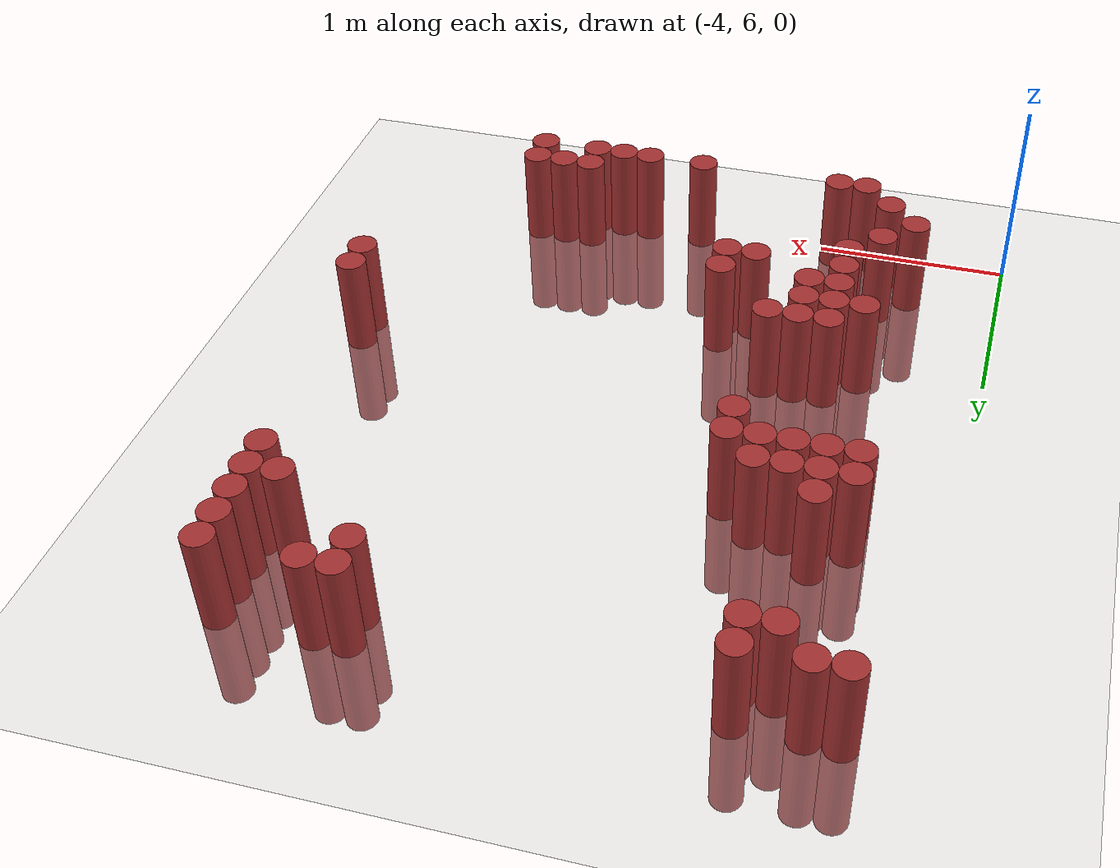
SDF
<sdf version="1.6">
 <world name="default">
  <model name="ground_plane">
   <static>1</static>
   <link name="link">
    <collision name="collision">
     <geometry><plane><normal>0 0 1</normal><size>100 100</size></plane></geometry>
     <surface><friction><ode><mu>100</mu><mu2>50</mu2></ode></friction></surface>
    </collision>
    <visual name="visual">
     <cast_shadows>0</cast_shadows>
     <geometry><plane><normal>0 0 1</normal><size>100 100</size></plane></geometry>
     <material>
      <script><uri>file://media/materials/scripts/gazebo.material</uri><name>Gazebo/Grey</name></script>
     </material>
    </visual>
   </link>
  </model>
  <model name="unit_cylinder_166">
   <static>1</static>
   <pose>-3.675000 9.375000 0.000000 0.000000 0.000000 0.000000</pose>
   <link name="link">
    <inertial>
     <mass>1</mass>
     <inertia><ixx>0.145833</ixx><ixy>0</ixy><ixz>0</ixz><iyy>0.145833</iyy><iyz>0</iyz><izz>0.125</izz></inertia>
    </inertial>
    <collision name="collision">
     <geometry><cylinder><radius>0.075000</radius><length>1</length></cylinder></geometry>
    </collision>
    <visual name="visual">
     <geometry><cylinder><radius>0.075000</radius><length>1</length></cylinder></geometry>
     <material>
      <ambient>0.648000 0.192000 0.192000 1</ambient>
      <diffuse>0.648000 0.192000 0.192000 1</diffuse>
     </material>
     <material>
      <script><name>Gazebo/Grey</name><uri>file://media/materials/scripts/gazebo.material</uri></script>
     </material>
    </visual>
   </link>
  </model>
  <model name="unit_cylinder_171">
   <static>1</static>
   <pose>-3.525000 6.375000 0.000000 0.000000 0.000000 0.000000</pose>
   <link name="link">
    <inertial>
     <mass>1</mass>
     <inertia><ixx>0.145833</ixx><ixy>0</ixy><ixz>0</ixz><iyy>0.145833</iyy><iyz>0</iyz><izz>0.125</izz></inertia>
    </inertial>
    <collision name="collision">
     <geometry><cylinder><radius>0.075000</radius><length>1</length></cylinder></geometry>
    </collision>
    <visual name="visual">
     <geometry><cylinder><radius>0.075000</radius><length>1</length></cylinder></geometry>
     <material>
      <ambient>0.648000 0.192000 0.192000 1</ambient>
      <diffuse>0.648000 0.192000 0.192000 1</diffuse>
     </material>
     <material>
      <script><name>Gazebo/Grey</name><uri>file://media/materials/scripts/gazebo.material</uri></script>
     </material>
    </visual>
   </link>
  </model>
  <model name="unit_cylinder_172">
   <static>1</static>
   <pose>-3.525000 8.175000 0.000000 0.000000 0.000000 0.000000</pose>
   <link name="link">
    <inertial>
     <mass>1</mass>
     <inertia><ixx>0.145833</ixx><ixy>0</ixy><ixz>0</ixz><iyy>0.145833</iyy><iyz>0</iyz><izz>0.125</izz></inertia>
    </inertial>
    <collision name="collision">
     <geometry><cylinder><radius>0.075000</radius><length>1</length></cylinder></geometry>
    </collision>
    <visual name="visual">
     <geometry><cylinder><radius>0.075000</radius><length>1</length></cylinder></geometry>
     <material>
      <ambient>0.648000 0.192000 0.192000 1</ambient>
      <diffuse>0.648000 0.192000 0.192000 1</diffuse>
     </material>
     <material>
      <script><name>Gazebo/Grey</name><uri>file://media/materials/scripts/gazebo.material</uri></script>
     </material>
    </visual>
   </link>
  </model>
  <model name="unit_cylinder_173">
   <static>1</static>
   <pose>-3.525000 8.325000 0.000000 0.000000 0.000000 0.000000</pose>
   <link name="link">
    <inertial>
     <mass>1</mass>
     <inertia><ixx>0.145833</ixx><ixy>0</ixy><ixz>0</ixz><iyy>0.145833</iyy><iyz>0</iyz><izz>0.125</izz></inertia>
    </inertial>
    <collision name="collision">
     <geometry><cylinder><radius>0.075000</radius><length>1</length></cylinder></geometry>
    </collision>
    <visual name="visual">
     <geometry><cylinder><radius>0.075000</radius><length>1</length></cylinder></geometry>
     <material>
      <ambient>0.648000 0.192000 0.192000 1</ambient>
      <diffuse>0.648000 0.192000 0.192000 1</diffuse>
     </material>
     <material>
      <script><name>Gazebo/Grey</name><uri>file://media/materials/scripts/gazebo.material</uri></script>
     </material>
    </visual>
   </link>
  </model>
  <model name="unit_cylinder_174">
   <static>1</static>
   <pose>-3.525000 9.375000 0.000000 0.000000 0.000000 0.000000</pose>
   <link name="link">
    <inertial>
     <mass>1</mass>
     <inertia><ixx>0.145833</ixx><ixy>0</ixy><ixz>0</ixz><iyy>0.145833</iyy><iyz>0</iyz><izz>0.125</izz></inertia>
    </inertial>
    <collision name="collision">
     <geometry><cylinder><radius>0.075000</radius><length>1</length></cylinder></geometry>
    </collision>
    <visual name="visual">
     <geometry><cylinder><radius>0.075000</radius><length>1</length></cylinder></geometry>
     <material>
      <ambient>0.648000 0.192000 0.192000 1</ambient>
      <diffuse>0.648000 0.192000 0.192000 1</diffuse>
     </material>
     <material>
      <script><name>Gazebo/Grey</name><uri>file://media/materials/scripts/gazebo.material</uri></script>
     </material>
    </visual>
   </link>
  </model>
  <model name="unit_cylinder_179">
   <static>1</static>
   <pose>-3.375000 6.225000 0.000000 0.000000 0.000000 0.000000</pose>
   <link name="link">
    <inertial>
     <mass>1</mass>
     <inertia><ixx>0.145833</ixx><ixy>0</ixy><ixz>0</ixz><iyy>0.145833</iyy><iyz>0</iyz><izz>0.125</izz></inertia>
    </inertial>
    <collision name="collision">
     <geometry><cylinder><radius>0.075000</radius><length>1</length></cylinder></geometry>
    </collision>
    <visual name="visual">
     <geometry><cylinder><radius>0.075000</radius><length>1</length></cylinder></geometry>
     <material>
      <ambient>0.648000 0.192000 0.192000 1</ambient>
      <diffuse>0.648000 0.192000 0.192000 1</diffuse>
     </material>
     <material>
      <script><name>Gazebo/Grey</name><uri>file://media/materials/scripts/gazebo.material</uri></script>
     </material>
    </visual>
   </link>
  </model>
  <model name="unit_cylinder_180">
   <static>1</static>
   <pose>-3.375000 6.525000 0.000000 0.000000 0.000000 0.000000</pose>
   <link name="link">
    <inertial>
     <mass>1</mass>
     <inertia><ixx>0.145833</ixx><ixy>0</ixy><ixz>0</ixz><iyy>0.145833</iyy><iyz>0</iyz><izz>0.125</izz></inertia>
    </inertial>
    <collision name="collision">
     <geometry><cylinder><radius>0.075000</radius><length>1</length></cylinder></geometry>
    </collision>
    <visual name="visual">
     <geometry><cylinder><radius>0.075000</radius><length>1</length></cylinder></geometry>
     <material>
      <ambient>0.648000 0.192000 0.192000 1</ambient>
      <diffuse>0.648000 0.192000 0.192000 1</diffuse>
     </material>
     <material>
      <script><name>Gazebo/Grey</name><uri>file://media/materials/scripts/gazebo.material</uri></script>
     </material>
    </visual>
   </link>
  </model>
  <model name="unit_cylinder_181">
   <static>1</static>
   <pose>-3.375000 7.125000 0.000000 0.000000 0.000000 0.000000</pose>
   <link name="link">
    <inertial>
     <mass>1</mass>
     <inertia><ixx>0.145833</ixx><ixy>0</ixy><ixz>0</ixz><iyy>0.145833</iyy><iyz>0</iyz><izz>0.125</izz></inertia>
    </inertial>
    <collision name="collision">
     <geometry><cylinder><radius>0.075000</radius><length>1</length></cylinder></geometry>
    </collision>
    <visual name="visual">
     <geometry><cylinder><radius>0.075000</radius><length>1</length></cylinder></geometry>
     <material>
      <ambient>0.648000 0.192000 0.192000 1</ambient>
      <diffuse>0.648000 0.192000 0.192000 1</diffuse>
     </material>
     <material>
      <script><name>Gazebo/Grey</name><uri>file://media/materials/scripts/gazebo.material</uri></script>
     </material>
    </visual>
   </link>
  </model>
  <model name="unit_cylinder_182">
   <static>1</static>
   <pose>-3.375000 8.175000 0.000000 0.000000 0.000000 0.000000</pose>
   <link name="link">
    <inertial>
     <mass>1</mass>
     <inertia><ixx>0.145833</ixx><ixy>0</ixy><ixz>0</ixz><iyy>0.145833</iyy><iyz>0</iyz><izz>0.125</izz></inertia>
    </inertial>
    <collision name="collision">
     <geometry><cylinder><radius>0.075000</radius><length>1</length></cylinder></geometry>
    </collision>
    <visual name="visual">
     <geometry><cylinder><radius>0.075000</radius><length>1</length></cylinder></geometry>
     <material>
      <ambient>0.648000 0.192000 0.192000 1</ambient>
      <diffuse>0.648000 0.192000 0.192000 1</diffuse>
     </material>
     <material>
      <script><name>Gazebo/Grey</name><uri>file://media/materials/scripts/gazebo.material</uri></script>
     </material>
    </visual>
   </link>
  </model>
  <model name="unit_cylinder_183">
   <static>1</static>
   <pose>-3.375000 8.325000 0.000000 0.000000 0.000000 0.000000</pose>
   <link name="link">
    <inertial>
     <mass>1</mass>
     <inertia><ixx>0.145833</ixx><ixy>0</ixy><ixz>0</ixz><iyy>0.145833</iyy><iyz>0</iyz><izz>0.125</izz></inertia>
    </inertial>
    <collision name="collision">
     <geometry><cylinder><radius>0.075000</radius><length>1</length></cylinder></geometry>
    </collision>
    <visual name="visual">
     <geometry><cylinder><radius>0.075000</radius><length>1</length></cylinder></geometry>
     <material>
      <ambient>0.648000 0.192000 0.192000 1</ambient>
      <diffuse>0.648000 0.192000 0.192000 1</diffuse>
     </material>
     <material>
      <script><name>Gazebo/Grey</name><uri>file://media/materials/scripts/gazebo.material</uri></script>
     </material>
    </visual>
   </link>
  </model>
  <model name="unit_cylinder_184">
   <static>1</static>
   <pose>-3.375000 8.475000 0.000000 0.000000 0.000000 0.000000</pose>
   <link name="link">
    <inertial>
     <mass>1</mass>
     <inertia><ixx>0.145833</ixx><ixy>0</ixy><ixz>0</ixz><iyy>0.145833</iyy><iyz>0</iyz><izz>0.125</izz></inertia>
    </inertial>
    <collision name="collision">
     <geometry><cylinder><radius>0.075000</radius><length>1</length></cylinder></geometry>
    </collision>
    <visual name="visual">
     <geometry><cylinder><radius>0.075000</radius><length>1</length></cylinder></geometry>
     <material>
      <ambient>0.648000 0.192000 0.192000 1</ambient>
      <diffuse>0.648000 0.192000 0.192000 1</diffuse>
     </material>
     <material>
      <script><name>Gazebo/Grey</name><uri>file://media/materials/scripts/gazebo.material</uri></script>
     </material>
    </visual>
   </link>
  </model>
  <model name="unit_cylinder_185">
   <static>1</static>
   <pose>-3.375000 9.225000 0.000000 0.000000 0.000000 0.000000</pose>
   <link name="link">
    <inertial>
     <mass>1</mass>
     <inertia><ixx>0.145833</ixx><ixy>0</ixy><ixz>0</ixz><iyy>0.145833</iyy><iyz>0</iyz><izz>0.125</izz></inertia>
    </inertial>
    <collision name="collision">
     <geometry><cylinder><radius>0.075000</radius><length>1</length></cylinder></geometry>
    </collision>
    <visual name="visual">
     <geometry><cylinder><radius>0.075000</radius><length>1</length></cylinder></geometry>
     <material>
      <ambient>0.648000 0.192000 0.192000 1</ambient>
      <diffuse>0.648000 0.192000 0.192000 1</diffuse>
     </material>
     <material>
      <script><name>Gazebo/Grey</name><uri>file://media/materials/scripts/gazebo.material</uri></script>
     </material>
    </visual>
   </link>
  </model>
  <model name="unit_cylinder_188">
   <static>1</static>
   <pose>-3.225000 6.075000 0.000000 0.000000 0.000000 0.000000</pose>
   <link name="link">
    <inertial>
     <mass>1</mass>
     <inertia><ixx>0.145833</ixx><ixy>0</ixy><ixz>0</ixz><iyy>0.145833</iyy><iyz>0</iyz><izz>0.125</izz></inertia>
    </inertial>
    <collision name="collision">
     <geometry><cylinder><radius>0.075000</radius><length>1</length></cylinder></geometry>
    </collision>
    <visual name="visual">
     <geometry><cylinder><radius>0.075000</radius><length>1</length></cylinder></geometry>
     <material>
      <ambient>0.648000 0.192000 0.192000 1</ambient>
      <diffuse>0.648000 0.192000 0.192000 1</diffuse>
     </material>
     <material>
      <script><name>Gazebo/Grey</name><uri>file://media/materials/scripts/gazebo.material</uri></script>
     </material>
    </visual>
   </link>
  </model>
  <model name="unit_cylinder_189">
   <static>1</static>
   <pose>-3.225000 6.675000 0.000000 0.000000 0.000000 0.000000</pose>
   <link name="link">
    <inertial>
     <mass>1</mass>
     <inertia><ixx>0.145833</ixx><ixy>0</ixy><ixz>0</ixz><iyy>0.145833</iyy><iyz>0</iyz><izz>0.125</izz></inertia>
    </inertial>
    <collision name="collision">
     <geometry><cylinder><radius>0.075000</radius><length>1</length></cylinder></geometry>
    </collision>
    <visual name="visual">
     <geometry><cylinder><radius>0.075000</radius><length>1</length></cylinder></geometry>
     <material>
      <ambient>0.648000 0.192000 0.192000 1</ambient>
      <diffuse>0.648000 0.192000 0.192000 1</diffuse>
     </material>
     <material>
      <script><name>Gazebo/Grey</name><uri>file://media/materials/scripts/gazebo.material</uri></script>
     </material>
    </visual>
   </link>
  </model>
  <model name="unit_cylinder_190">
   <static>1</static>
   <pose>-3.225000 6.825000 0.000000 0.000000 0.000000 0.000000</pose>
   <link name="link">
    <inertial>
     <mass>1</mass>
     <inertia><ixx>0.145833</ixx><ixy>0</ixy><ixz>0</ixz><iyy>0.145833</iyy><iyz>0</iyz><izz>0.125</izz></inertia>
    </inertial>
    <collision name="collision">
     <geometry><cylinder><radius>0.075000</radius><length>1</length></cylinder></geometry>
    </collision>
    <visual name="visual">
     <geometry><cylinder><radius>0.075000</radius><length>1</length></cylinder></geometry>
     <material>
      <ambient>0.648000 0.192000 0.192000 1</ambient>
      <diffuse>0.648000 0.192000 0.192000 1</diffuse>
     </material>
     <material>
      <script><name>Gazebo/Grey</name><uri>file://media/materials/scripts/gazebo.material</uri></script>
     </material>
    </visual>
   </link>
  </model>
  <model name="unit_cylinder_191">
   <static>1</static>
   <pose>-3.225000 6.975000 0.000000 0.000000 0.000000 0.000000</pose>
   <link name="link">
    <inertial>
     <mass>1</mass>
     <inertia><ixx>0.145833</ixx><ixy>0</ixy><ixz>0</ixz><iyy>0.145833</iyy><iyz>0</iyz><izz>0.125</izz></inertia>
    </inertial>
    <collision name="collision">
     <geometry><cylinder><radius>0.075000</radius><length>1</length></cylinder></geometry>
    </collision>
    <visual name="visual">
     <geometry><cylinder><radius>0.075000</radius><length>1</length></cylinder></geometry>
     <material>
      <ambient>0.648000 0.192000 0.192000 1</ambient>
      <diffuse>0.648000 0.192000 0.192000 1</diffuse>
     </material>
     <material>
      <script><name>Gazebo/Grey</name><uri>file://media/materials/scripts/gazebo.material</uri></script>
     </material>
    </visual>
   </link>
  </model>
  <model name="unit_cylinder_192">
   <static>1</static>
   <pose>-3.225000 7.125000 0.000000 0.000000 0.000000 0.000000</pose>
   <link name="link">
    <inertial>
     <mass>1</mass>
     <inertia><ixx>0.145833</ixx><ixy>0</ixy><ixz>0</ixz><iyy>0.145833</iyy><iyz>0</iyz><izz>0.125</izz></inertia>
    </inertial>
    <collision name="collision">
     <geometry><cylinder><radius>0.075000</radius><length>1</length></cylinder></geometry>
    </collision>
    <visual name="visual">
     <geometry><cylinder><radius>0.075000</radius><length>1</length></cylinder></geometry>
     <material>
      <ambient>0.648000 0.192000 0.192000 1</ambient>
      <diffuse>0.648000 0.192000 0.192000 1</diffuse>
     </material>
     <material>
      <script><name>Gazebo/Grey</name><uri>file://media/materials/scripts/gazebo.material</uri></script>
     </material>
    </visual>
   </link>
  </model>
  <model name="unit_cylinder_193">
   <static>1</static>
   <pose>-3.225000 7.275000 0.000000 0.000000 0.000000 0.000000</pose>
   <link name="link">
    <inertial>
     <mass>1</mass>
     <inertia><ixx>0.145833</ixx><ixy>0</ixy><ixz>0</ixz><iyy>0.145833</iyy><iyz>0</iyz><izz>0.125</izz></inertia>
    </inertial>
    <collision name="collision">
     <geometry><cylinder><radius>0.075000</radius><length>1</length></cylinder></geometry>
    </collision>
    <visual name="visual">
     <geometry><cylinder><radius>0.075000</radius><length>1</length></cylinder></geometry>
     <material>
      <ambient>0.648000 0.192000 0.192000 1</ambient>
      <diffuse>0.648000 0.192000 0.192000 1</diffuse>
     </material>
     <material>
      <script><name>Gazebo/Grey</name><uri>file://media/materials/scripts/gazebo.material</uri></script>
     </material>
    </visual>
   </link>
  </model>
  <model name="unit_cylinder_194">
   <static>1</static>
   <pose>-3.225000 8.175000 0.000000 0.000000 0.000000 0.000000</pose>
   <link name="link">
    <inertial>
     <mass>1</mass>
     <inertia><ixx>0.145833</ixx><ixy>0</ixy><ixz>0</ixz><iyy>0.145833</iyy><iyz>0</iyz><izz>0.125</izz></inertia>
    </inertial>
    <collision name="collision">
     <geometry><cylinder><radius>0.075000</radius><length>1</length></cylinder></geometry>
    </collision>
    <visual name="visual">
     <geometry><cylinder><radius>0.075000</radius><length>1</length></cylinder></geometry>
     <material>
      <ambient>0.648000 0.192000 0.192000 1</ambient>
      <diffuse>0.648000 0.192000 0.192000 1</diffuse>
     </material>
     <material>
      <script><name>Gazebo/Grey</name><uri>file://media/materials/scripts/gazebo.material</uri></script>
     </material>
    </visual>
   </link>
  </model>
  <model name="unit_cylinder_195">
   <static>1</static>
   <pose>-3.225000 8.325000 0.000000 0.000000 0.000000 0.000000</pose>
   <link name="link">
    <inertial>
     <mass>1</mass>
     <inertia><ixx>0.145833</ixx><ixy>0</ixy><ixz>0</ixz><iyy>0.145833</iyy><iyz>0</iyz><izz>0.125</izz></inertia>
    </inertial>
    <collision name="collision">
     <geometry><cylinder><radius>0.075000</radius><length>1</length></cylinder></geometry>
    </collision>
    <visual name="visual">
     <geometry><cylinder><radius>0.075000</radius><length>1</length></cylinder></geometry>
     <material>
      <ambient>0.648000 0.192000 0.192000 1</ambient>
      <diffuse>0.648000 0.192000 0.192000 1</diffuse>
     </material>
     <material>
      <script><name>Gazebo/Grey</name><uri>file://media/materials/scripts/gazebo.material</uri></script>
     </material>
    </visual>
   </link>
  </model>
  <model name="unit_cylinder_196">
   <static>1</static>
   <pose>-3.225000 9.225000 0.000000 0.000000 0.000000 0.000000</pose>
   <link name="link">
    <inertial>
     <mass>1</mass>
     <inertia><ixx>0.145833</ixx><ixy>0</ixy><ixz>0</ixz><iyy>0.145833</iyy><iyz>0</iyz><izz>0.125</izz></inertia>
    </inertial>
    <collision name="collision">
     <geometry><cylinder><radius>0.075000</radius><length>1</length></cylinder></geometry>
    </collision>
    <visual name="visual">
     <geometry><cylinder><radius>0.075000</radius><length>1</length></cylinder></geometry>
     <material>
      <ambient>0.648000 0.192000 0.192000 1</ambient>
      <diffuse>0.648000 0.192000 0.192000 1</diffuse>
     </material>
     <material>
      <script><name>Gazebo/Grey</name><uri>file://media/materials/scripts/gazebo.material</uri></script>
     </material>
    </visual>
   </link>
  </model>
  <model name="unit_cylinder_197">
   <static>1</static>
   <pose>-3.225000 9.375000 0.000000 0.000000 0.000000 0.000000</pose>
   <link name="link">
    <inertial>
     <mass>1</mass>
     <inertia><ixx>0.145833</ixx><ixy>0</ixy><ixz>0</ixz><iyy>0.145833</iyy><iyz>0</iyz><izz>0.125</izz></inertia>
    </inertial>
    <collision name="collision">
     <geometry><cylinder><radius>0.075000</radius><length>1</length></cylinder></geometry>
    </collision>
    <visual name="visual">
     <geometry><cylinder><radius>0.075000</radius><length>1</length></cylinder></geometry>
     <material>
      <ambient>0.648000 0.192000 0.192000 1</ambient>
      <diffuse>0.648000 0.192000 0.192000 1</diffuse>
     </material>
     <material>
      <script><name>Gazebo/Grey</name><uri>file://media/materials/scripts/gazebo.material</uri></script>
     </material>
    </visual>
   </link>
  </model>
  <model name="unit_cylinder_201">
   <static>1</static>
   <pose>-3.075000 6.075000 0.000000 0.000000 0.000000 0.000000</pose>
   <link name="link">
    <inertial>
     <mass>1</mass>
     <inertia><ixx>0.145833</ixx><ixy>0</ixy><ixz>0</ixz><iyy>0.145833</iyy><iyz>0</iyz><izz>0.125</izz></inertia>
    </inertial>
    <collision name="collision">
     <geometry><cylinder><radius>0.075000</radius><length>1</length></cylinder></geometry>
    </collision>
    <visual name="visual">
     <geometry><cylinder><radius>0.075000</radius><length>1</length></cylinder></geometry>
     <material>
      <ambient>0.648000 0.192000 0.192000 1</ambient>
      <diffuse>0.648000 0.192000 0.192000 1</diffuse>
     </material>
     <material>
      <script><name>Gazebo/Grey</name><uri>file://media/materials/scripts/gazebo.material</uri></script>
     </material>
    </visual>
   </link>
  </model>
  <model name="unit_cylinder_202">
   <static>1</static>
   <pose>-3.075000 6.975000 0.000000 0.000000 0.000000 0.000000</pose>
   <link name="link">
    <inertial>
     <mass>1</mass>
     <inertia><ixx>0.145833</ixx><ixy>0</ixy><ixz>0</ixz><iyy>0.145833</iyy><iyz>0</iyz><izz>0.125</izz></inertia>
    </inertial>
    <collision name="collision">
     <geometry><cylinder><radius>0.075000</radius><length>1</length></cylinder></geometry>
    </collision>
    <visual name="visual">
     <geometry><cylinder><radius>0.075000</radius><length>1</length></cylinder></geometry>
     <material>
      <ambient>0.648000 0.192000 0.192000 1</ambient>
      <diffuse>0.648000 0.192000 0.192000 1</diffuse>
     </material>
     <material>
      <script><name>Gazebo/Grey</name><uri>file://media/materials/scripts/gazebo.material</uri></script>
     </material>
    </visual>
   </link>
  </model>
  <model name="unit_cylinder_203">
   <static>1</static>
   <pose>-3.075000 7.125000 0.000000 0.000000 0.000000 0.000000</pose>
   <link name="link">
    <inertial>
     <mass>1</mass>
     <inertia><ixx>0.145833</ixx><ixy>0</ixy><ixz>0</ixz><iyy>0.145833</iyy><iyz>0</iyz><izz>0.125</izz></inertia>
    </inertial>
    <collision name="collision">
     <geometry><cylinder><radius>0.075000</radius><length>1</length></cylinder></geometry>
    </collision>
    <visual name="visual">
     <geometry><cylinder><radius>0.075000</radius><length>1</length></cylinder></geometry>
     <material>
      <ambient>0.648000 0.192000 0.192000 1</ambient>
      <diffuse>0.648000 0.192000 0.192000 1</diffuse>
     </material>
     <material>
      <script><name>Gazebo/Grey</name><uri>file://media/materials/scripts/gazebo.material</uri></script>
     </material>
    </visual>
   </link>
  </model>
  <model name="unit_cylinder_204">
   <static>1</static>
   <pose>-3.075000 7.275000 0.000000 0.000000 0.000000 0.000000</pose>
   <link name="link">
    <inertial>
     <mass>1</mass>
     <inertia><ixx>0.145833</ixx><ixy>0</ixy><ixz>0</ixz><iyy>0.145833</iyy><iyz>0</iyz><izz>0.125</izz></inertia>
    </inertial>
    <collision name="collision">
     <geometry><cylinder><radius>0.075000</radius><length>1</length></cylinder></geometry>
    </collision>
    <visual name="visual">
     <geometry><cylinder><radius>0.075000</radius><length>1</length></cylinder></geometry>
     <material>
      <ambient>0.648000 0.192000 0.192000 1</ambient>
      <diffuse>0.648000 0.192000 0.192000 1</diffuse>
     </material>
     <material>
      <script><name>Gazebo/Grey</name><uri>file://media/materials/scripts/gazebo.material</uri></script>
     </material>
    </visual>
   </link>
  </model>
  <model name="unit_cylinder_205">
   <static>1</static>
   <pose>-3.075000 8.175000 0.000000 0.000000 0.000000 0.000000</pose>
   <link name="link">
    <inertial>
     <mass>1</mass>
     <inertia><ixx>0.145833</ixx><ixy>0</ixy><ixz>0</ixz><iyy>0.145833</iyy><iyz>0</iyz><izz>0.125</izz></inertia>
    </inertial>
    <collision name="collision">
     <geometry><cylinder><radius>0.075000</radius><length>1</length></cylinder></geometry>
    </collision>
    <visual name="visual">
     <geometry><cylinder><radius>0.075000</radius><length>1</length></cylinder></geometry>
     <material>
      <ambient>0.648000 0.192000 0.192000 1</ambient>
      <diffuse>0.648000 0.192000 0.192000 1</diffuse>
     </material>
     <material>
      <script><name>Gazebo/Grey</name><uri>file://media/materials/scripts/gazebo.material</uri></script>
     </material>
    </visual>
   </link>
  </model>
  <model name="unit_cylinder_206">
   <static>1</static>
   <pose>-3.075000 8.325000 0.000000 0.000000 0.000000 0.000000</pose>
   <link name="link">
    <inertial>
     <mass>1</mass>
     <inertia><ixx>0.145833</ixx><ixy>0</ixy><ixz>0</ixz><iyy>0.145833</iyy><iyz>0</iyz><izz>0.125</izz></inertia>
    </inertial>
    <collision name="collision">
     <geometry><cylinder><radius>0.075000</radius><length>1</length></cylinder></geometry>
    </collision>
    <visual name="visual">
     <geometry><cylinder><radius>0.075000</radius><length>1</length></cylinder></geometry>
     <material>
      <ambient>0.648000 0.192000 0.192000 1</ambient>
      <diffuse>0.648000 0.192000 0.192000 1</diffuse>
     </material>
     <material>
      <script><name>Gazebo/Grey</name><uri>file://media/materials/scripts/gazebo.material</uri></script>
     </material>
    </visual>
   </link>
  </model>
  <model name="unit_cylinder_208">
   <static>1</static>
   <pose>-2.925000 7.275000 0.000000 0.000000 0.000000 0.000000</pose>
   <link name="link">
    <inertial>
     <mass>1</mass>
     <inertia><ixx>0.145833</ixx><ixy>0</ixy><ixz>0</ixz><iyy>0.145833</iyy><iyz>0</iyz><izz>0.125</izz></inertia>
    </inertial>
    <collision name="collision">
     <geometry><cylinder><radius>0.075000</radius><length>1</length></cylinder></geometry>
    </collision>
    <visual name="visual">
     <geometry><cylinder><radius>0.075000</radius><length>1</length></cylinder></geometry>
     <material>
      <ambient>0.648000 0.192000 0.192000 1</ambient>
      <diffuse>0.648000 0.192000 0.192000 1</diffuse>
     </material>
     <material>
      <script><name>Gazebo/Grey</name><uri>file://media/materials/scripts/gazebo.material</uri></script>
     </material>
    </visual>
   </link>
  </model>
  <model name="unit_cylinder_209">
   <static>1</static>
   <pose>-2.925000 8.025000 0.000000 0.000000 0.000000 0.000000</pose>
   <link name="link">
    <inertial>
     <mass>1</mass>
     <inertia><ixx>0.145833</ixx><ixy>0</ixy><ixz>0</ixz><iyy>0.145833</iyy><iyz>0</iyz><izz>0.125</izz></inertia>
    </inertial>
    <collision name="collision">
     <geometry><cylinder><radius>0.075000</radius><length>1</length></cylinder></geometry>
    </collision>
    <visual name="visual">
     <geometry><cylinder><radius>0.075000</radius><length>1</length></cylinder></geometry>
     <material>
      <ambient>0.648000 0.192000 0.192000 1</ambient>
      <diffuse>0.648000 0.192000 0.192000 1</diffuse>
     </material>
     <material>
      <script><name>Gazebo/Grey</name><uri>file://media/materials/scripts/gazebo.material</uri></script>
     </material>
    </visual>
   </link>
  </model>
  <model name="unit_cylinder_210">
   <static>1</static>
   <pose>-2.925000 8.175000 0.000000 0.000000 0.000000 0.000000</pose>
   <link name="link">
    <inertial>
     <mass>1</mass>
     <inertia><ixx>0.145833</ixx><ixy>0</ixy><ixz>0</ixz><iyy>0.145833</iyy><iyz>0</iyz><izz>0.125</izz></inertia>
    </inertial>
    <collision name="collision">
     <geometry><cylinder><radius>0.075000</radius><length>1</length></cylinder></geometry>
    </collision>
    <visual name="visual">
     <geometry><cylinder><radius>0.075000</radius><length>1</length></cylinder></geometry>
     <material>
      <ambient>0.648000 0.192000 0.192000 1</ambient>
      <diffuse>0.648000 0.192000 0.192000 1</diffuse>
     </material>
     <material>
      <script><name>Gazebo/Grey</name><uri>file://media/materials/scripts/gazebo.material</uri></script>
     </material>
    </visual>
   </link>
  </model>
  <model name="unit_cylinder_213">
   <static>1</static>
   <pose>-2.775000 6.825000 0.000000 0.000000 0.000000 0.000000</pose>
   <link name="link">
    <inertial>
     <mass>1</mass>
     <inertia><ixx>0.145833</ixx><ixy>0</ixy><ixz>0</ixz><iyy>0.145833</iyy><iyz>0</iyz><izz>0.125</izz></inertia>
    </inertial>
    <collision name="collision">
     <geometry><cylinder><radius>0.075000</radius><length>1</length></cylinder></geometry>
    </collision>
    <visual name="visual">
     <geometry><cylinder><radius>0.075000</radius><length>1</length></cylinder></geometry>
     <material>
      <ambient>0.648000 0.192000 0.192000 1</ambient>
      <diffuse>0.648000 0.192000 0.192000 1</diffuse>
     </material>
     <material>
      <script><name>Gazebo/Grey</name><uri>file://media/materials/scripts/gazebo.material</uri></script>
     </material>
    </visual>
   </link>
  </model>
  <model name="unit_cylinder_216">
   <static>1</static>
   <pose>-2.625000 6.825000 0.000000 0.000000 0.000000 0.000000</pose>
   <link name="link">
    <inertial>
     <mass>1</mass>
     <inertia><ixx>0.145833</ixx><ixy>0</ixy><ixz>0</ixz><iyy>0.145833</iyy><iyz>0</iyz><izz>0.125</izz></inertia>
    </inertial>
    <collision name="collision">
     <geometry><cylinder><radius>0.075000</radius><length>1</length></cylinder></geometry>
    </collision>
    <visual name="visual">
     <geometry><cylinder><radius>0.075000</radius><length>1</length></cylinder></geometry>
     <material>
      <ambient>0.648000 0.192000 0.192000 1</ambient>
      <diffuse>0.648000 0.192000 0.192000 1</diffuse>
     </material>
     <material>
      <script><name>Gazebo/Grey</name><uri>file://media/materials/scripts/gazebo.material</uri></script>
     </material>
    </visual>
   </link>
  </model>
  <model name="unit_cylinder_217">
   <static>1</static>
   <pose>-2.625000 6.975000 0.000000 0.000000 0.000000 0.000000</pose>
   <link name="link">
    <inertial>
     <mass>1</mass>
     <inertia><ixx>0.145833</ixx><ixy>0</ixy><ixz>0</ixz><iyy>0.145833</iyy><iyz>0</iyz><izz>0.125</izz></inertia>
    </inertial>
    <collision name="collision">
     <geometry><cylinder><radius>0.075000</radius><length>1</length></cylinder></geometry>
    </collision>
    <visual name="visual">
     <geometry><cylinder><radius>0.075000</radius><length>1</length></cylinder></geometry>
     <material>
      <ambient>0.648000 0.192000 0.192000 1</ambient>
      <diffuse>0.648000 0.192000 0.192000 1</diffuse>
     </material>
     <material>
      <script><name>Gazebo/Grey</name><uri>file://media/materials/scripts/gazebo.material</uri></script>
     </material>
    </visual>
   </link>
  </model>
  <model name="unit_cylinder_221">
   <static>1</static>
   <pose>-2.325000 6.075000 0.000000 0.000000 0.000000 0.000000</pose>
   <link name="link">
    <inertial>
     <mass>1</mass>
     <inertia><ixx>0.145833</ixx><ixy>0</ixy><ixz>0</ixz><iyy>0.145833</iyy><iyz>0</iyz><izz>0.125</izz></inertia>
    </inertial>
    <collision name="collision">
     <geometry><cylinder><radius>0.075000</radius><length>1</length></cylinder></geometry>
    </collision>
    <visual name="visual">
     <geometry><cylinder><radius>0.075000</radius><length>1</length></cylinder></geometry>
     <material>
      <ambient>0.648000 0.192000 0.192000 1</ambient>
      <diffuse>0.648000 0.192000 0.192000 1</diffuse>
     </material>
     <material>
      <script><name>Gazebo/Grey</name><uri>file://media/materials/scripts/gazebo.material</uri></script>
     </material>
    </visual>
   </link>
  </model>
  <model name="unit_cylinder_227">
   <static>1</static>
   <pose>-2.025000 6.075000 0.000000 0.000000 0.000000 0.000000</pose>
   <link name="link">
    <inertial>
     <mass>1</mass>
     <inertia><ixx>0.145833</ixx><ixy>0</ixy><ixz>0</ixz><iyy>0.145833</iyy><iyz>0</iyz><izz>0.125</izz></inertia>
    </inertial>
    <collision name="collision">
     <geometry><cylinder><radius>0.075000</radius><length>1</length></cylinder></geometry>
    </collision>
    <visual name="visual">
     <geometry><cylinder><radius>0.075000</radius><length>1</length></cylinder></geometry>
     <material>
      <ambient>0.648000 0.192000 0.192000 1</ambient>
      <diffuse>0.648000 0.192000 0.192000 1</diffuse>
     </material>
     <material>
      <script><name>Gazebo/Grey</name><uri>file://media/materials/scripts/gazebo.material</uri></script>
     </material>
    </visual>
   </link>
  </model>
  <model name="unit_cylinder_229">
   <static>1</static>
   <pose>-1.875000 6.075000 0.000000 0.000000 0.000000 0.000000</pose>
   <link name="link">
    <inertial>
     <mass>1</mass>
     <inertia><ixx>0.145833</ixx><ixy>0</ixy><ixz>0</ixz><iyy>0.145833</iyy><iyz>0</iyz><izz>0.125</izz></inertia>
    </inertial>
    <collision name="collision">
     <geometry><cylinder><radius>0.075000</radius><length>1</length></cylinder></geometry>
    </collision>
    <visual name="visual">
     <geometry><cylinder><radius>0.075000</radius><length>1</length></cylinder></geometry>
     <material>
      <ambient>0.648000 0.192000 0.192000 1</ambient>
      <diffuse>0.648000 0.192000 0.192000 1</diffuse>
     </material>
     <material>
      <script><name>Gazebo/Grey</name><uri>file://media/materials/scripts/gazebo.material</uri></script>
     </material>
    </visual>
   </link>
  </model>
  <model name="unit_cylinder_233">
   <static>1</static>
   <pose>-1.725000 6.075000 0.000000 0.000000 0.000000 0.000000</pose>
   <link name="link">
    <inertial>
     <mass>1</mass>
     <inertia><ixx>0.145833</ixx><ixy>0</ixy><ixz>0</ixz><iyy>0.145833</iyy><iyz>0</iyz><izz>0.125</izz></inertia>
    </inertial>
    <collision name="collision">
     <geometry><cylinder><radius>0.075000</radius><length>1</length></cylinder></geometry>
    </collision>
    <visual name="visual">
     <geometry><cylinder><radius>0.075000</radius><length>1</length></cylinder></geometry>
     <material>
      <ambient>0.648000 0.192000 0.192000 1</ambient>
      <diffuse>0.648000 0.192000 0.192000 1</diffuse>
     </material>
     <material>
      <script><name>Gazebo/Grey</name><uri>file://media/materials/scripts/gazebo.material</uri></script>
     </material>
    </visual>
   </link>
  </model>
  <model name="unit_cylinder_234">
   <static>1</static>
   <pose>-1.725000 6.225000 0.000000 0.000000 0.000000 0.000000</pose>
   <link name="link">
    <inertial>
     <mass>1</mass>
     <inertia><ixx>0.145833</ixx><ixy>0</ixy><ixz>0</ixz><iyy>0.145833</iyy><iyz>0</iyz><izz>0.125</izz></inertia>
    </inertial>
    <collision name="collision">
     <geometry><cylinder><radius>0.075000</radius><length>1</length></cylinder></geometry>
    </collision>
    <visual name="visual">
     <geometry><cylinder><radius>0.075000</radius><length>1</length></cylinder></geometry>
     <material>
      <ambient>0.648000 0.192000 0.192000 1</ambient>
      <diffuse>0.648000 0.192000 0.192000 1</diffuse>
     </material>
     <material>
      <script><name>Gazebo/Grey</name><uri>file://media/materials/scripts/gazebo.material</uri></script>
     </material>
    </visual>
   </link>
  </model>
  <model name="unit_cylinder_240">
   <static>1</static>
   <pose>-1.575000 6.225000 0.000000 0.000000 0.000000 0.000000</pose>
   <link name="link">
    <inertial>
     <mass>1</mass>
     <inertia><ixx>0.145833</ixx><ixy>0</ixy><ixz>0</ixz><iyy>0.145833</iyy><iyz>0</iyz><izz>0.125</izz></inertia>
    </inertial>
    <collision name="collision">
     <geometry><cylinder><radius>0.075000</radius><length>1</length></cylinder></geometry>
    </collision>
    <visual name="visual">
     <geometry><cylinder><radius>0.075000</radius><length>1</length></cylinder></geometry>
     <material>
      <ambient>0.648000 0.192000 0.192000 1</ambient>
      <diffuse>0.648000 0.192000 0.192000 1</diffuse>
     </material>
     <material>
      <script><name>Gazebo/Grey</name><uri>file://media/materials/scripts/gazebo.material</uri></script>
     </material>
    </visual>
   </link>
  </model>
  <model name="unit_cylinder_241">
   <static>1</static>
   <pose>-1.575000 9.225000 0.000000 0.000000 0.000000 0.000000</pose>
   <link name="link">
    <inertial>
     <mass>1</mass>
     <inertia><ixx>0.145833</ixx><ixy>0</ixy><ixz>0</ixz><iyy>0.145833</iyy><iyz>0</iyz><izz>0.125</izz></inertia>
    </inertial>
    <collision name="collision">
     <geometry><cylinder><radius>0.075000</radius><length>1</length></cylinder></geometry>
    </collision>
    <visual name="visual">
     <geometry><cylinder><radius>0.075000</radius><length>1</length></cylinder></geometry>
     <material>
      <ambient>0.648000 0.192000 0.192000 1</ambient>
      <diffuse>0.648000 0.192000 0.192000 1</diffuse>
     </material>
     <material>
      <script><name>Gazebo/Grey</name><uri>file://media/materials/scripts/gazebo.material</uri></script>
     </material>
    </visual>
   </link>
  </model>
  <model name="unit_cylinder_242">
   <static>1</static>
   <pose>-1.575000 9.375000 0.000000 0.000000 0.000000 0.000000</pose>
   <link name="link">
    <inertial>
     <mass>1</mass>
     <inertia><ixx>0.145833</ixx><ixy>0</ixy><ixz>0</ixz><iyy>0.145833</iyy><iyz>0</iyz><izz>0.125</izz></inertia>
    </inertial>
    <collision name="collision">
     <geometry><cylinder><radius>0.075000</radius><length>1</length></cylinder></geometry>
    </collision>
    <visual name="visual">
     <geometry><cylinder><radius>0.075000</radius><length>1</length></cylinder></geometry>
     <material>
      <ambient>0.648000 0.192000 0.192000 1</ambient>
      <diffuse>0.648000 0.192000 0.192000 1</diffuse>
     </material>
     <material>
      <script><name>Gazebo/Grey</name><uri>file://media/materials/scripts/gazebo.material</uri></script>
     </material>
    </visual>
   </link>
  </model>
  <model name="unit_cylinder_246">
   <static>1</static>
   <pose>-1.425000 6.075000 0.000000 0.000000 0.000000 0.000000</pose>
   <link name="link">
    <inertial>
     <mass>1</mass>
     <inertia><ixx>0.145833</ixx><ixy>0</ixy><ixz>0</ixz><iyy>0.145833</iyy><iyz>0</iyz><izz>0.125</izz></inertia>
    </inertial>
    <collision name="collision">
     <geometry><cylinder><radius>0.075000</radius><length>1</length></cylinder></geometry>
    </collision>
    <visual name="visual">
     <geometry><cylinder><radius>0.075000</radius><length>1</length></cylinder></geometry>
     <material>
      <ambient>0.648000 0.192000 0.192000 1</ambient>
      <diffuse>0.648000 0.192000 0.192000 1</diffuse>
     </material>
     <material>
      <script><name>Gazebo/Grey</name><uri>file://media/materials/scripts/gazebo.material</uri></script>
     </material>
    </visual>
   </link>
  </model>
  <model name="unit_cylinder_247">
   <static>1</static>
   <pose>-1.425000 6.225000 0.000000 0.000000 0.000000 0.000000</pose>
   <link name="link">
    <inertial>
     <mass>1</mass>
     <inertia><ixx>0.145833</ixx><ixy>0</ixy><ixz>0</ixz><iyy>0.145833</iyy><iyz>0</iyz><izz>0.125</izz></inertia>
    </inertial>
    <collision name="collision">
     <geometry><cylinder><radius>0.075000</radius><length>1</length></cylinder></geometry>
    </collision>
    <visual name="visual">
     <geometry><cylinder><radius>0.075000</radius><length>1</length></cylinder></geometry>
     <material>
      <ambient>0.648000 0.192000 0.192000 1</ambient>
      <diffuse>0.648000 0.192000 0.192000 1</diffuse>
     </material>
     <material>
      <script><name>Gazebo/Grey</name><uri>file://media/materials/scripts/gazebo.material</uri></script>
     </material>
    </visual>
   </link>
  </model>
  <model name="unit_cylinder_248">
   <static>1</static>
   <pose>-1.425000 9.375000 0.000000 0.000000 0.000000 0.000000</pose>
   <link name="link">
    <inertial>
     <mass>1</mass>
     <inertia><ixx>0.145833</ixx><ixy>0</ixy><ixz>0</ixz><iyy>0.145833</iyy><iyz>0</iyz><izz>0.125</izz></inertia>
    </inertial>
    <collision name="collision">
     <geometry><cylinder><radius>0.075000</radius><length>1</length></cylinder></geometry>
    </collision>
    <visual name="visual">
     <geometry><cylinder><radius>0.075000</radius><length>1</length></cylinder></geometry>
     <material>
      <ambient>0.648000 0.192000 0.192000 1</ambient>
      <diffuse>0.648000 0.192000 0.192000 1</diffuse>
     </material>
     <material>
      <script><name>Gazebo/Grey</name><uri>file://media/materials/scripts/gazebo.material</uri></script>
     </material>
    </visual>
   </link>
  </model>
  <model name="unit_cylinder_253">
   <static>1</static>
   <pose>-1.125000 8.925000 0.000000 0.000000 0.000000 0.000000</pose>
   <link name="link">
    <inertial>
     <mass>1</mass>
     <inertia><ixx>0.145833</ixx><ixy>0</ixy><ixz>0</ixz><iyy>0.145833</iyy><iyz>0</iyz><izz>0.125</izz></inertia>
    </inertial>
    <collision name="collision">
     <geometry><cylinder><radius>0.075000</radius><length>1</length></cylinder></geometry>
    </collision>
    <visual name="visual">
     <geometry><cylinder><radius>0.075000</radius><length>1</length></cylinder></geometry>
     <material>
      <ambient>0.648000 0.192000 0.192000 1</ambient>
      <diffuse>0.648000 0.192000 0.192000 1</diffuse>
     </material>
     <material>
      <script><name>Gazebo/Grey</name><uri>file://media/materials/scripts/gazebo.material</uri></script>
     </material>
    </visual>
   </link>
  </model>
  <model name="unit_cylinder_254">
   <static>1</static>
   <pose>-0.975000 8.775000 0.000000 0.000000 0.000000 0.000000</pose>
   <link name="link">
    <inertial>
     <mass>1</mass>
     <inertia><ixx>0.145833</ixx><ixy>0</ixy><ixz>0</ixz><iyy>0.145833</iyy><iyz>0</iyz><izz>0.125</izz></inertia>
    </inertial>
    <collision name="collision">
     <geometry><cylinder><radius>0.075000</radius><length>1</length></cylinder></geometry>
    </collision>
    <visual name="visual">
     <geometry><cylinder><radius>0.075000</radius><length>1</length></cylinder></geometry>
     <material>
      <ambient>0.648000 0.192000 0.192000 1</ambient>
      <diffuse>0.648000 0.192000 0.192000 1</diffuse>
     </material>
     <material>
      <script><name>Gazebo/Grey</name><uri>file://media/materials/scripts/gazebo.material</uri></script>
     </material>
    </visual>
   </link>
  </model>
  <model name="unit_cylinder_255">
   <static>1</static>
   <pose>-0.975000 8.925000 0.000000 0.000000 0.000000 0.000000</pose>
   <link name="link">
    <inertial>
     <mass>1</mass>
     <inertia><ixx>0.145833</ixx><ixy>0</ixy><ixz>0</ixz><iyy>0.145833</iyy><iyz>0</iyz><izz>0.125</izz></inertia>
    </inertial>
    <collision name="collision">
     <geometry><cylinder><radius>0.075000</radius><length>1</length></cylinder></geometry>
    </collision>
    <visual name="visual">
     <geometry><cylinder><radius>0.075000</radius><length>1</length></cylinder></geometry>
     <material>
      <ambient>0.648000 0.192000 0.192000 1</ambient>
      <diffuse>0.648000 0.192000 0.192000 1</diffuse>
     </material>
     <material>
      <script><name>Gazebo/Grey</name><uri>file://media/materials/scripts/gazebo.material</uri></script>
     </material>
    </visual>
   </link>
  </model>
  <model name="unit_cylinder_256">
   <static>1</static>
   <pose>-0.975000 9.075000 0.000000 0.000000 0.000000 0.000000</pose>
   <link name="link">
    <inertial>
     <mass>1</mass>
     <inertia><ixx>0.145833</ixx><ixy>0</ixy><ixz>0</ixz><iyy>0.145833</iyy><iyz>0</iyz><izz>0.125</izz></inertia>
    </inertial>
    <collision name="collision">
     <geometry><cylinder><radius>0.075000</radius><length>1</length></cylinder></geometry>
    </collision>
    <visual name="visual">
     <geometry><cylinder><radius>0.075000</radius><length>1</length></cylinder></geometry>
     <material>
      <ambient>0.648000 0.192000 0.192000 1</ambient>
      <diffuse>0.648000 0.192000 0.192000 1</diffuse>
     </material>
     <material>
      <script><name>Gazebo/Grey</name><uri>file://media/materials/scripts/gazebo.material</uri></script>
     </material>
    </visual>
   </link>
  </model>
  <model name="unit_cylinder_257">
   <static>1</static>
   <pose>-0.975000 9.225000 0.000000 0.000000 0.000000 0.000000</pose>
   <link name="link">
    <inertial>
     <mass>1</mass>
     <inertia><ixx>0.145833</ixx><ixy>0</ixy><ixz>0</ixz><iyy>0.145833</iyy><iyz>0</iyz><izz>0.125</izz></inertia>
    </inertial>
    <collision name="collision">
     <geometry><cylinder><radius>0.075000</radius><length>1</length></cylinder></geometry>
    </collision>
    <visual name="visual">
     <geometry><cylinder><radius>0.075000</radius><length>1</length></cylinder></geometry>
     <material>
      <ambient>0.648000 0.192000 0.192000 1</ambient>
      <diffuse>0.648000 0.192000 0.192000 1</diffuse>
     </material>
     <material>
      <script><name>Gazebo/Grey</name><uri>file://media/materials/scripts/gazebo.material</uri></script>
     </material>
    </visual>
   </link>
  </model>
  <model name="unit_cylinder_258">
   <static>1</static>
   <pose>-0.975000 9.375000 0.000000 0.000000 0.000000 0.000000</pose>
   <link name="link">
    <inertial>
     <mass>1</mass>
     <inertia><ixx>0.145833</ixx><ixy>0</ixy><ixz>0</ixz><iyy>0.145833</iyy><iyz>0</iyz><izz>0.125</izz></inertia>
    </inertial>
    <collision name="collision">
     <geometry><cylinder><radius>0.075000</radius><length>1</length></cylinder></geometry>
    </collision>
    <visual name="visual">
     <geometry><cylinder><radius>0.075000</radius><length>1</length></cylinder></geometry>
     <material>
      <ambient>0.648000 0.192000 0.192000 1</ambient>
      <diffuse>0.648000 0.192000 0.192000 1</diffuse>
     </material>
     <material>
      <script><name>Gazebo/Grey</name><uri>file://media/materials/scripts/gazebo.material</uri></script>
     </material>
    </visual>
   </link>
  </model>
  <model name="unit_cylinder_259">
   <static>1</static>
   <pose>-0.825000 7.275000 0.000000 0.000000 0.000000 0.000000</pose>
   <link name="link">
    <inertial>
     <mass>1</mass>
     <inertia><ixx>0.145833</ixx><ixy>0</ixy><ixz>0</ixz><iyy>0.145833</iyy><iyz>0</iyz><izz>0.125</izz></inertia>
    </inertial>
    <collision name="collision">
     <geometry><cylinder><radius>0.075000</radius><length>1</length></cylinder></geometry>
    </collision>
    <visual name="visual">
     <geometry><cylinder><radius>0.075000</radius><length>1</length></cylinder></geometry>
     <material>
      <ambient>0.648000 0.192000 0.192000 1</ambient>
      <diffuse>0.648000 0.192000 0.192000 1</diffuse>
     </material>
     <material>
      <script><name>Gazebo/Grey</name><uri>file://media/materials/scripts/gazebo.material</uri></script>
     </material>
    </visual>
   </link>
  </model>
  <model name="unit_cylinder_260">
   <static>1</static>
   <pose>-0.825000 7.425000 0.000000 0.000000 0.000000 0.000000</pose>
   <link name="link">
    <inertial>
     <mass>1</mass>
     <inertia><ixx>0.145833</ixx><ixy>0</ixy><ixz>0</ixz><iyy>0.145833</iyy><iyz>0</iyz><izz>0.125</izz></inertia>
    </inertial>
    <collision name="collision">
     <geometry><cylinder><radius>0.075000</radius><length>1</length></cylinder></geometry>
    </collision>
    <visual name="visual">
     <geometry><cylinder><radius>0.075000</radius><length>1</length></cylinder></geometry>
     <material>
      <ambient>0.648000 0.192000 0.192000 1</ambient>
      <diffuse>0.648000 0.192000 0.192000 1</diffuse>
     </material>
     <material>
      <script><name>Gazebo/Grey</name><uri>file://media/materials/scripts/gazebo.material</uri></script>
     </material>
    </visual>
   </link>
  </model>
 </world>
</sdf>
